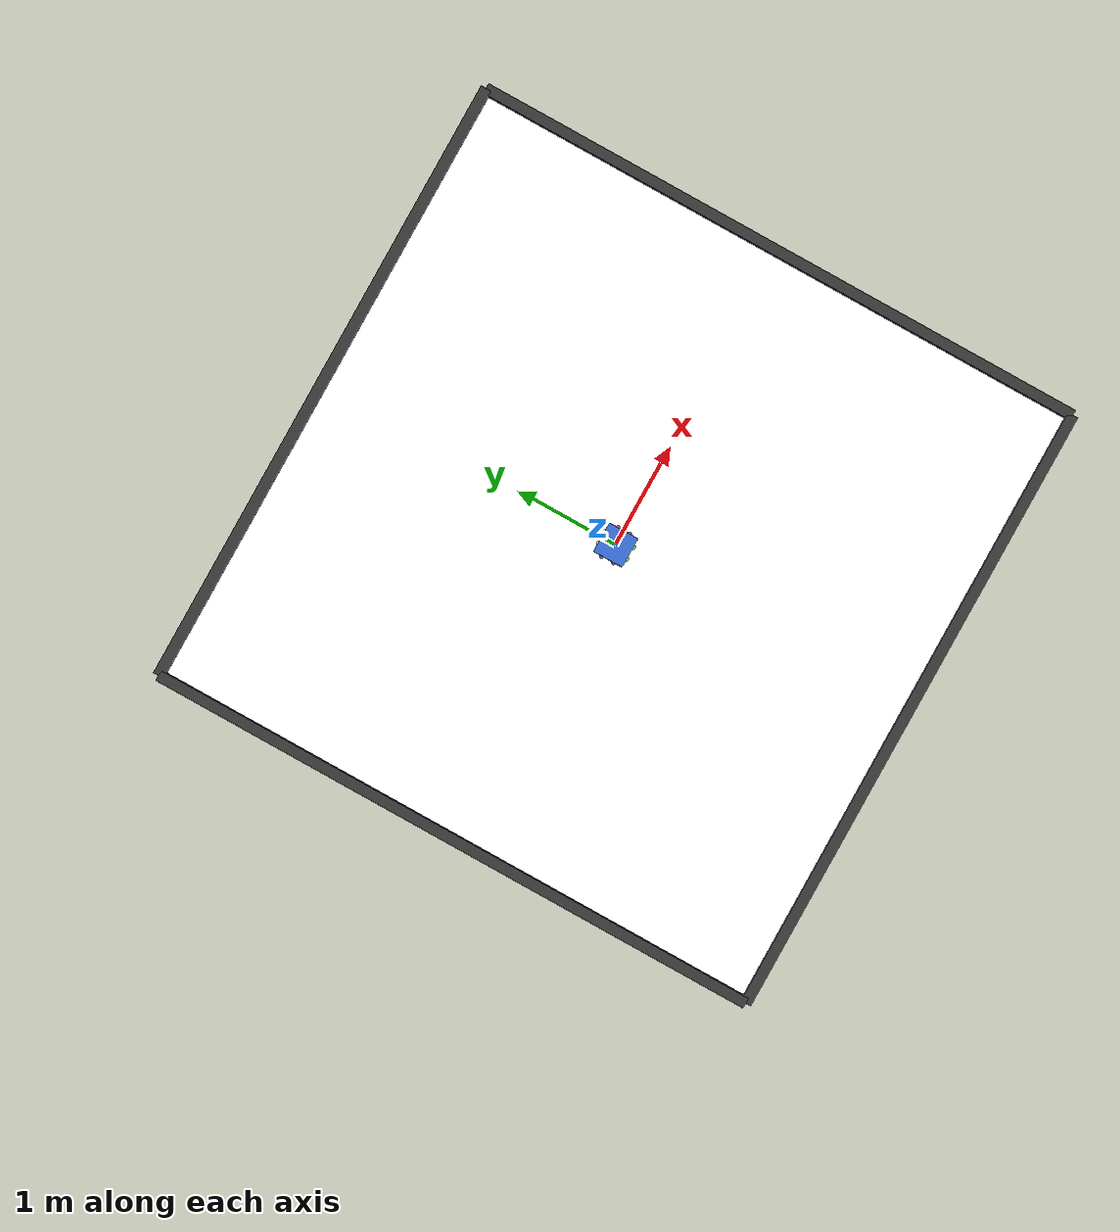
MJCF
<mujoco model="satellite_planar">
  <compiler angle="degree" coordinate="local" inertiafromgeom="false"/>

  <!-- Match legacy timing: Euler at 0.02s -->
  <option integrator="Euler" timestep="0.02" gravity="0 0 0"/>

  <asset>
    <material name="mat_workspace" rgba="0.05 0.05 0.05 1" specular="0" emission="0" shininess="0" reflectance="0"/>
    <material name="mat_thruster_active" rgba="1 0.2 0.2 1" emission="1"/>
    <material name="mat_thruster_inactive" rgba="0.5 0.5 0.5 0.3"/>

    <!-- Grid -->
    <texture name="grid_tex" type="2d" builtin="checker" width="512" height="512" rgb1=".1 .2 .3" rgb2=".2 .3 .4" mark="edge" markrgb=".8 .8 .8"/>
    <material name="grid_mat" texture="grid_tex" texrepeat="6 6" texuniform="true" reflectance=".2"/>

    <!-- White Background -->
    <texture name="tex_sky" type="skybox" builtin="gradient" width="512" height="512" rgb1="1 1 1" rgb2="0.9 0.9 0.9"/>
  </asset>

  <visual>
    <map fogstart="5" fogend="10" haze="0" znear="0.01" zfar="50"/>
    <headlight ambient="0.4 0.4 0.4" diffuse="0.4 0.4 0.4" specular="0.1 0.1 0.1"/>
    <rgba haze="0.1 0.1 0.1 1"/>
    <global offwidth="1920" offheight="1080"/>
  </visual>

  <default>
    <joint armature="0" damping="0.0" limited="false"/>
    <!-- Geoms frictionless by default; collisions enabled when contype/conaffinity set on individual geoms -->
    <!-- Changed default to neutral gray to avoid "Golden" accidents -->
    <geom conaffinity="0" contype="0" condim="3" friction="0 0 0" rgba="0.5 0.5 0.5 1"/>
  </default>

  <worldbody>
    <!-- Simple Overhead Lighting - High Ambient for Softness -->
    <light ambient="0.7 0.7 0.7" diffuse="0.1 0.1 0.1" specular="0 0 0" pos="0 0 4" dir="0 0 -1" castshadow="false"/>

    <!-- Fixed Camera for MP4 Rendering -->
    <!-- Positioned at (6, -6, 8), looking at center (0,0,0) manually defined via xyaxes -->
    <camera name="overhead_cam" pos="6 -6 8" mode="fixed" xyaxes="0.707 0.707 0 -0.485 0.485 0.727"/>

    <!-- Ground plane for air bearing table (6m x 6m) -->
    <!-- Explicit RGBA to override default and ensure Dark Gray -->
    <geom name="floor" type="plane" size="3 3 0.1" material="grid_mat" rgba="1 1 1 1" contype="0" conaffinity="0" friction="0 0 0"/>

    <!-- 3x3m workspace edges (10cm high), bouncy walls -->
    <geom name="wall_north" type="box" pos="0 3 0.05" size="3 0.05 0.05" material="mat_workspace" rgba="0.2 0.2 0.2 1"
          contype="1" conaffinity="1" friction="0 0 0" solref="0.002 1" solimp="0.9 0.95 0.001"/>
    <geom name="wall_south" type="box" pos="0 -3 0.05" size="3 0.05 0.05" material="mat_workspace" rgba="0.2 0.2 0.2 1"
          contype="1" conaffinity="1" friction="0 0 0" solref="0.002 1" solimp="0.9 0.95 0.001"/>
    <geom name="wall_east" type="box" pos="3 0 0.05" size="0.05 3 0.05" material="mat_workspace" rgba="0.2 0.2 0.2 1"
          contype="1" conaffinity="1" friction="0 0 0" solref="0.002 1" solimp="0.9 0.95 0.001"/>
    <geom name="wall_west" type="box" pos="-3 0 0.05" size="0.05 3 0.05" material="mat_workspace" rgba="0.2 0.2 0.2 1"
          contype="1" conaffinity="1" friction="0 0 0" solref="0.002 1" solimp="0.9 0.95 0.001"/>

    <!-- Satellite body -->
    <body name="satellite" pos="0 0 0.145">
      <!-- Planar joints (2D motion: x, y, rotation about z) -->
      <joint name="x" type="slide" axis="1 0 0" pos="0 0 0" damping="0"/>
      <joint name="y" type="slide" axis="0 1 0" pos="0 0 0" damping="0"/>
      <joint name="z_rot" type="hinge" axis="0 0 1" pos="0 0 0" damping="0"/>

      <!-- Main body (290mm cube, 23.09 kg total) -->
      <geom name="body" type="box" size="0.145 0.145 0.145"
            mass="23.09"
            pos="0 0 0"
            rgba="0.2 0.3 0.8 1"
            contype="1" conaffinity="1" friction="0 0 0"
            solref="0.002 1" solimp="0.9 0.95 0.001"/>

      <!-- Visual-only box at thruster height (~0.195m) for reference -->
      <geom name="sat_visual_box" type="box" size="0.145 0.145 0.01"
            pos="0 0 0.195" rgba="0.2 0.4 0.8 1"
            contype="0" conaffinity="0" friction="0 0 0"/>

      <!-- Override inertia with exact value (planar yaw inertia ~0.324 kg*m^2) -->
      <inertial pos="0 0 0" mass="23.09"
                diaginertia="0.324 0.324 0.324"/>

      <!-- Thruster visual markers and force application sites -->

      <!-- Thruster 1: (0.145, 0.06), direction (-1, 0) -->
      <site name="thruster1" pos="0.145 0.06 0" size="0.02" rgba="1 0 0 0.6"/>

      <!-- Thruster 2: (0.145, -0.06), direction (-1, 0) -->
      <site name="thruster2" pos="0.145 -0.06 0" size="0.02" rgba="1 0.2 0 0.6"/>

      <!-- Thruster 3: (0.06, -0.145), direction (0, 1) -->
      <site name="thruster3" pos="0.06 -0.145 0" size="0.02" rgba="0 1 0 0.6"/>

      <!-- Thruster 4: (-0.06, -0.145), direction (0, 1) -->
      <site name="thruster4" pos="-0.06 -0.145 0" size="0.02" rgba="0.2 1 0 0.6"/>

      <!-- Thruster 5: (-0.145, -0.06), direction (1, 0) -->
      <site name="thruster5" pos="-0.145 -0.06 0" size="0.02" rgba="0 0 1 0.6"/>

      <!-- Thruster 6: (-0.145, 0.06), direction (1, 0) -->
      <site name="thruster6" pos="-0.145 0.06 0" size="0.02" rgba="0 0.2 1 0.6"/>

      <!-- Thruster 7: (-0.06, 0.145), direction (0, -1) -->
      <site name="thruster7" pos="-0.06 0.145 0" size="0.02" rgba="1 1 0 0.6"/>

      <!-- Thruster 8: (0.06, 0.145), direction (0, -1) -->
      <site name="thruster8" pos="0.06 0.145 0" size="0.02" rgba="1 0.8 0 0.6"/>

      <!-- Track camera follows satellite -->
      <camera name="track" mode="trackcom" pos="0 -4 3" xyaxes="1 0 0 0 0.6 1"/>
    </body>
  </worldbody>

  <actuator>
    <!-- Direct force actuators using adhesion actuators
         These apply forces at sites in world coordinates -->

    <!-- Thruster 1: 0.441 N in direction (-1, 0, 0) -->
    <adhesion name="thruster1_x" body="satellite" ctrlrange="0 0.441450"/>

    <!-- Thruster 2: 0.431 N in direction (-1, 0, 0) -->
    <adhesion name="thruster2_x" body="satellite" ctrlrange="0 0.430659"/>

    <!-- Thruster 3: 0.428 N in direction (0, 1, 0) -->
    <adhesion name="thruster3_y" body="satellite" ctrlrange="0 0.427716"/>

    <!-- Thruster 4: 0.438 N in direction (0, 1, 0) -->
    <adhesion name="thruster4_y" body="satellite" ctrlrange="0 0.438017"/>

    <!-- Thruster 5: 0.469 N in direction (1, 0, 0) -->
    <adhesion name="thruster5_x" body="satellite" ctrlrange="0 0.468918"/>

    <!-- Thruster 6: 0.447 N in direction (1, 0, 0) -->
    <adhesion name="thruster6_x" body="satellite" ctrlrange="0 0.446846"/>

    <!-- Thruster 7: 0.467 N in direction (0, -1, 0) -->
    <adhesion name="thruster7_y" body="satellite" ctrlrange="0 0.466956"/>

    <!-- Thruster 8: 0.484 N in direction (0, -1, 0) -->
    <adhesion name="thruster8_y" body="satellite" ctrlrange="0 0.484124"/>
  </actuator>

  <sensor>
    <!-- Position sensors -->
    <jointpos name="x_pos" joint="x"/>
    <jointpos name="y_pos" joint="y"/>
    <jointpos name="z_rot_pos" joint="z_rot"/>

    <!-- Velocity sensors -->
    <jointvel name="x_vel" joint="x"/>
    <jointvel name="y_vel" joint="y"/>
    <jointvel name="z_rot_vel" joint="z_rot"/>
  </sensor>
</mujoco>
